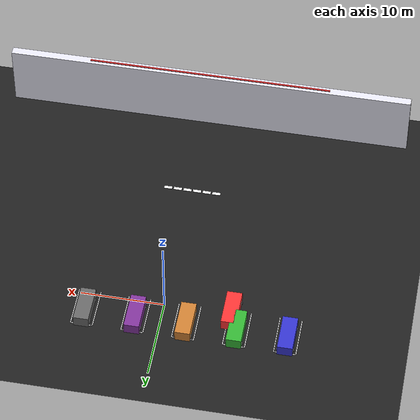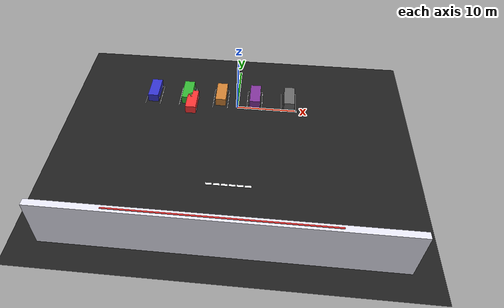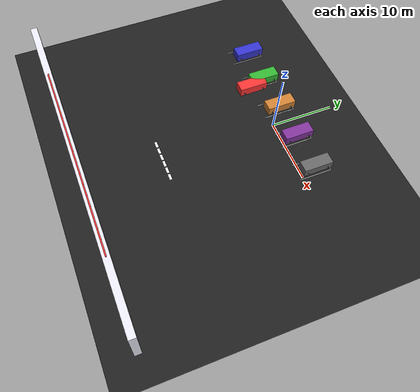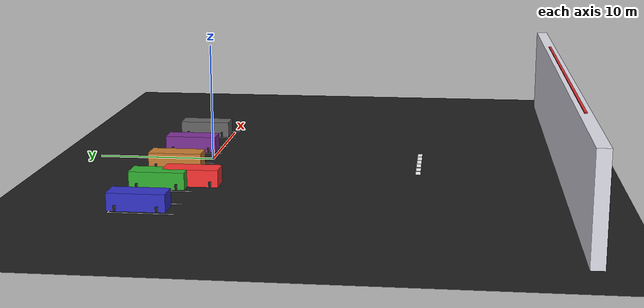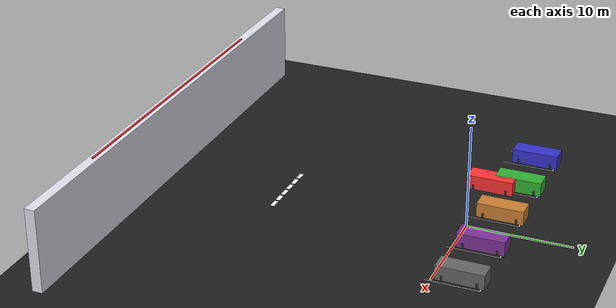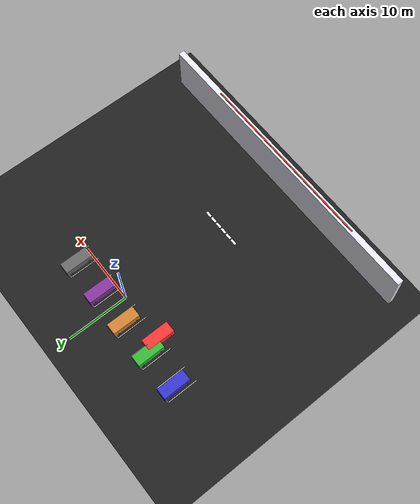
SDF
<?xml version="1.0" ?>
<sdf version="1.10">
  <world name="stopandshop_brigham_world">

    <gravity>0 0 -9.81</gravity>

    <!-- Sun light -->
    <light name="sun" type="directional">
      <cast_shadows>true</cast_shadows>
      <pose>0 0 30 0 -0.6 0</pose>
      <diffuse>1 1 1 1</diffuse>
      <specular>0.1 0.1 0.1 1</specular>
      <attenuation>
        <range>2000</range>
        <constant>0.9</constant>
        <linear>0.01</linear>
        <quadratic>0.001</quadratic>
      </attenuation>
      <direction>-0.5 0.5 -1</direction>
    </light>

    <!-- Asphalt parking lot -->
    <model name="parking_lot">
      <static>true</static>
      <link name="link">
        <collision name="collision">
          <geometry>
            <plane>
              <normal>0 0 1</normal>
              <size>80 80</size>
            </plane>
          </geometry>
        </collision>
        <visual name="visual">
          <geometry>
            <plane>
              <normal>0 0 1</normal>
              <size>80 80</size>
            </plane>
          </geometry>
          <material>
            <ambient>0.08 0.08 0.08 1</ambient>
            <diffuse>0.12 0.12 0.12 1</diffuse>
          </material>
        </visual>
      </link>
    </model>

    <!-- Store front wall with red banner -->
    <model name="store_front">
      <static>true</static>
      <link name="body">
        <pose>0 -30 4 0 0 0</pose>
        <collision name="collision">
          <geometry>
            <box>
              <size>50 1 8</size>
            </box>
          </geometry>
        </collision>
        <visual name="wall">
          <geometry>
            <box>
              <size>50 1 8</size>
            </box>
          </geometry>
          <material>
            <ambient>0.85 0.85 0.9 1</ambient>
            <diffuse>0.9 0.9 0.95 1</diffuse>
          </material>
        </visual>
        <visual name="banner">
          <pose>0 0 3.5 0 0 0</pose>
          <geometry>
            <box>
              <size>30 0.2 1.2</size>
            </box>
          </geometry>
          <material>
            <ambient>0.7 0.1 0.1 1</ambient>
            <diffuse>0.9 0.2 0.2 1</diffuse>
          </material>
        </visual>
      </link>
    </model>

    <!-- Zebra-style crosswalk in front of store -->
    <model name="crosswalk">
      <static>true</static>
      <link name="link">
        <visual name="stripe1">
          <pose>-3 -18 0.02 0 0 0</pose>
          <geometry>
            <box>
              <size>1.0 0.4 0.02</size>
            </box>
          </geometry>
          <material>
            <ambient>0.9 0.9 0.9 1</ambient>
            <diffuse>1.0 1.0 1.0 1</diffuse>
          </material>
        </visual>
        <visual name="stripe2">
          <pose>-1.8 -18 0.02 0 0 0</pose>
          <geometry>
            <box>
              <size>1.0 0.4 0.02</size>
            </box>
          </geometry>
          <material>
            <ambient>0.9 0.9 0.9 1</ambient>
            <diffuse>1.0 1.0 1.0 1</diffuse>
          </material>
        </visual>
        <visual name="stripe3">
          <pose>-0.6 -18 0.02 0 0 0</pose>
          <geometry>
            <box>
              <size>1.0 0.4 0.02</size>
            </box>
          </geometry>
          <material>
            <ambient>0.9 0.9 0.9 1</ambient>
            <diffuse>1.0 1.0 1.0 1</diffuse>
          </material>
        </visual>
        <visual name="stripe4">
          <pose>0.6 -18 0.02 0 0 0</pose>
          <geometry>
            <box>
              <size>1.0 0.4 0.02</size>
            </box>
          </geometry>
          <material>
            <ambient>0.9 0.9 0.9 1</ambient>
            <diffuse>1.0 1.0 1.0 1</diffuse>
          </material>
        </visual>
        <visual name="stripe5">
          <pose>1.8 -18 0.02 0 0 0</pose>
          <geometry>
            <box>
              <size>1.0 0.4 0.02</size>
            </box>
          </geometry>
          <material>
            <ambient>0.9 0.9 0.9 1</ambient>
            <diffuse>1.0 1.0 1.0 1</diffuse>
          </material>
        </visual>
        <visual name="stripe6">
          <pose>3.0 -18 0.02 0 0 0</pose>
          <geometry>
            <box>
              <size>1.0 0.4 0.02</size>
            </box>
          </geometry>
          <material>
            <ambient>0.9 0.9 0.9 1</ambient>
            <diffuse>1.0 1.0 1.0 1</diffuse>
          </material>
        </visual>
      </link>
    </model>

    <!-- Parking stalls row (6 nice rectangular slots) -->
    <model name="parking_stalls_row1">
      <static>true</static>
      <link name="link">
        <!-- Stall centers at x = -15, -9, -3, 3, 9, 15 (y ~2) -->
        <!-- Stall 1 -->
        <visual name="stall1_left">
          <pose>-16.3 2 0.02 0 0 0</pose>
          <geometry><box><size>0.1 5.0 0.02</size></box></geometry>
          <material><ambient>0.9 0.9 0.9 1</ambient><diffuse>1 1 1 1</diffuse></material>
        </visual>
        <visual name="stall1_right">
          <pose>-13.7 2 0.02 0 0 0</pose>
          <geometry><box><size>0.1 5.0 0.02</size></box></geometry>
          <material><ambient>0.9 0.9 0.9 1</ambient><diffuse>1 1 1 1</diffuse></material>
        </visual>
        <visual name="stall1_back">
          <pose>-15 4.5 0.02 0 0 0</pose>
          <geometry><box><size>2.6 0.1 0.02</size></box></geometry>
          <material><ambient>0.9 0.9 0.9 1</ambient><diffuse>1 1 1 1</diffuse></material>
        </visual>

        <!-- Stall 2 -->
        <visual name="stall2_left">
          <pose>-10.3 2 0.02 0 0 0</pose>
          <geometry><box><size>0.1 5.0 0.02</size></box></geometry>
          <material><ambient>0.9 0.9 0.9 1</ambient><diffuse>1 1 1 1</diffuse></material>
        </visual>
        <visual name="stall2_right">
          <pose>-7.7 2 0.02 0 0 0</pose>
          <geometry><box><size>0.1 5.0 0.02</size></box></geometry>
          <material><ambient>0.9 0.9 0.9 1</ambient><diffuse>1 1 1 1</diffuse></material>
        </visual>
        <visual name="stall2_back">
          <pose>-9 4.5 0.02 0 0 0</pose>
          <geometry><box><size>2.6 0.1 0.02</size></box></geometry>
          <material><ambient>0.9 0.9 0.9 1</ambient><diffuse>1 1 1 1</diffuse></material>
        </visual>

        <!-- Stall 3 -->
        <visual name="stall3_left">
          <pose>-4.3 2 0.02 0 0 0</pose>
          <geometry><box><size>0.1 5.0 0.02</size></box></geometry>
          <material><ambient>0.9 0.9 0.9 1</ambient><diffuse>1 1 1 1</diffuse></material>
        </visual>
        <visual name="stall3_right">
          <pose>-1.7 2 0.02 0 0 0</pose>
          <geometry><box><size>0.1 5.0 0.02</size></box></geometry>
          <material><ambient>0.9 0.9 0.9 1</ambient><diffuse>1 1 1 1</diffuse></material>
        </visual>
        <visual name="stall3_back">
          <pose>-3 4.5 0.02 0 0 0</pose>
          <geometry><box><size>2.6 0.1 0.02</size></box></geometry>
          <material><ambient>0.9 0.9 0.9 1</ambient><diffuse>1 1 1 1</diffuse></material>
        </visual>

        <!-- Stall 4 -->
        <visual name="stall4_left">
          <pose>1.7 2 0.02 0 0 0</pose>
          <geometry><box><size>0.1 5.0 0.02</size></box></geometry>
          <material><ambient>0.9 0.9 0.9 1</ambient><diffuse>1 1 1 1</diffuse></material>
        </visual>
        <visual name="stall4_right">
          <pose>4.3 2 0.02 0 0 0</pose>
          <geometry><box><size>0.1 5.0 0.02</size></box></geometry>
          <material><ambient>0.9 0.9 0.9 1</ambient><diffuse>1 1 1 1</diffuse></material>
        </visual>
        <visual name="stall4_back">
          <pose>3 4.5 0.02 0 0 0</pose>
          <geometry><box><size>2.6 0.1 0.02</size></box></geometry>
          <material><ambient>0.9 0.9 0.9 1</ambient><diffuse>1 1 1 1</diffuse></material>
        </visual>

        <!-- Stall 5 -->
        <visual name="stall5_left">
          <pose>7.7 2 0.02 0 0 0</pose>
          <geometry><box><size>0.1 5.0 0.02</size></box></geometry>
          <material><ambient>0.9 0.9 0.9 1</ambient><diffuse>1 1 1 1</diffuse></material>
        </visual>
        <visual name="stall5_right">
          <pose>10.3 2 0.02 0 0 0</pose>
          <geometry><box><size>0.1 5.0 0.02</size></box></geometry>
          <material><ambient>0.9 0.9 0.9 1</ambient><diffuse>1 1 1 1</diffuse></material>
        </visual>
        <visual name="stall5_back">
          <pose>9 4.5 0.02 0 0 0</pose>
          <geometry><box><size>2.6 0.1 0.02</size></box></geometry>
          <material><ambient>0.9 0.9 0.9 1</ambient><diffuse>1 1 1 1</diffuse></material>
        </visual>
      </link>
    </model>

    <!-- Function to define a car with wheels: just copy and change x / color -->
    <!-- Parked car 1 -->
    <model name="parked_car_1">
      <static>true</static>
      <link name="body">
        <pose>-15 2.5 0.7 0 0 0</pose>
        <visual name="car_body">
          <geometry><box><size>1.8 4.5 1.4</size></box></geometry>
          <material><ambient>0.1 0.1 0.6 1</ambient><diffuse>0.2 0.2 0.8 1</diffuse></material>
        </visual>
        <!-- wheels at bottom (z offset -0.45, radius 0.25) -->
        <visual name="wheel_fl">
          <pose>-0.8 1.6 -0.45 1.57 0 0</pose>
          <geometry><cylinder><radius>0.25</radius><length>0.2</length></cylinder></geometry>
          <material><ambient>0.05 0.05 0.05 1</ambient><diffuse>0.1 0.1 0.1 1</diffuse></material>
        </visual>
        <visual name="wheel_fr">
          <pose>0.8 1.6 -0.45 1.57 0 0</pose>
          <geometry><cylinder><radius>0.25</radius><length>0.2</length></cylinder></geometry>
          <material><ambient>0.05 0.05 0.05 1</ambient><diffuse>0.1 0.1 0.1 1</diffuse></material>
        </visual>
        <visual name="wheel_rl">
          <pose>-0.8 -1.6 -0.45 1.57 0 0</pose>
          <geometry><cylinder><radius>0.25</radius><length>0.2</length></cylinder></geometry>
          <material><ambient>0.05 0.05 0.05 1</ambient><diffuse>0.1 0.1 0.1 1</diffuse></material>
        </visual>
        <visual name="wheel_rr">
          <pose>0.8 -1.6 -0.45 1.57 0 0</pose>
          <geometry><cylinder><radius>0.25</radius><length>0.2</length></cylinder></geometry>
          <material><ambient>0.05 0.05 0.05 1</ambient><diffuse>0.1 0.1 0.1 1</diffuse></material>
        </visual>
      </link>
    </model>

    <!-- Parked car 2 -->
    <model name="parked_car_2">
      <static>true</static>
      <link name="body">
        <pose>-9 2.5 0.7 0 0 0</pose>
        <visual name="car_body">
          <geometry><box><size>1.8 4.5 1.4</size></box></geometry>
          <material><ambient>0.1 0.5 0.1 1</ambient><diffuse>0.2 0.7 0.2 1</diffuse></material>
        </visual>
        <visual name="wheel_fl">
          <pose>-0.8 1.6 -0.45 1.57 0 0</pose>
          <geometry><cylinder><radius>0.25</radius><length>0.2</length></cylinder></geometry>
          <material><ambient>0.05 0.05 0.05 1</ambient><diffuse>0.1 0.1 0.1 1</diffuse></material>
        </visual>
        <visual name="wheel_fr">
          <pose>0.8 1.6 -0.45 1.57 0 0</pose>
          <geometry><cylinder><radius>0.25</radius><length>0.2</length></cylinder></geometry>
          <material><ambient>0.05 0.05 0.05 1</ambient><diffuse>0.1 0.1 0.1 1</diffuse></material>
        </visual>
        <visual name="wheel_rl">
          <pose>-0.8 -1.6 -0.45 1.57 0 0</pose>
          <geometry><cylinder><radius>0.25</radius><length>0.2</length></cylinder></geometry>
          <material><ambient>0.05 0.05 0.05 1</ambient><diffuse>0.1 0.1 0.1 1</diffuse></material>
        </visual>
        <visual name="wheel_rr">
          <pose>0.8 -1.6 -0.45 1.57 0 0</pose>
          <geometry><cylinder><radius>0.25</radius><length>0.2</length></cylinder></geometry>
          <material><ambient>0.05 0.05 0.05 1</ambient><diffuse>0.1 0.1 0.1 1</diffuse></material>
        </visual>
      </link>
    </model>

    <!-- Parked car 3 -->
    <model name="parked_car_3">
      <static>true</static>
      <link name="body">
        <pose>-3 2.5 0.7 0 0 0</pose>
        <visual name="car_body">
          <geometry><box><size>1.8 4.5 1.4</size></box></geometry>
          <material><ambient>0.6 0.4 0.1 1</ambient><diffuse>0.8 0.5 0.2 1</diffuse></material>
        </visual>
        <visual name="wheel_fl">
          <pose>-0.8 1.6 -0.45 1.57 0 0</pose>
          <geometry><cylinder><radius>0.25</radius><length>0.2</length></cylinder></geometry>
          <material><ambient>0.05 0.05 0.05 1</ambient><diffuse>0.1 0.1 0.1 1</diffuse></material>
        </visual>
        <visual name="wheel_fr">
          <pose>0.8 1.6 -0.45 1.57 0 0</pose>
          <geometry><cylinder><radius>0.25</radius><length>0.2</length></cylinder></geometry>
          <material><ambient>0.05 0.05 0.05 1</ambient><diffuse>0.1 0.1 0.1 1</diffuse></material>
        </visual>
        <visual name="wheel_rl">
          <pose>-0.8 -1.6 -0.45 1.57 0 0</pose>
          <geometry><cylinder><radius>0.25</radius><length>0.2</length></cylinder></geometry>
          <material><ambient>0.05 0.05 0.05 1</ambient><diffuse>0.1 0.1 0.1 1</diffuse></material>
        </visual>
        <visual name="wheel_rr">
          <pose>0.8 -1.6 -0.45 1.57 0 0</pose>
          <geometry><cylinder><radius>0.25</radius><length>0.2</length></cylinder></geometry>
          <material><ambient>0.05 0.05 0.05 1</ambient><diffuse>0.1 0.1 0.1 1</diffuse></material>
        </visual>
      </link>
    </model>

    <!-- Parked car 4 -->
    <model name="parked_car_4">
      <static>true</static>
      <link name="body">
        <pose>3 2.5 0.7 0 0 0</pose>
        <visual name="car_body">
          <geometry><box><size>1.8 4.5 1.4</size></box></geometry>
          <material><ambient>0.3 0.1 0.4 1</ambient><diffuse>0.5 0.2 0.6 1</diffuse></material>
        </visual>
        <visual name="wheel_fl">
          <pose>-0.8 1.6 -0.45 1.57 0 0</pose>
          <geometry><cylinder><radius>0.25</radius><length>0.2</length></cylinder></geometry>
          <material><ambient>0.05 0.05 0.05 1</ambient><diffuse>0.1 0.1 0.1 1</diffuse></material>
        </visual>
        <visual name="wheel_fr">
          <pose>0.8 1.6 -0.45 1.57 0 0</pose>
          <geometry><cylinder><radius>0.25</radius><length>0.2</length></cylinder></geometry>
          <material><ambient>0.05 0.05 0.05 1</ambient><diffuse>0.1 0.1 0.1 1</diffuse></material>
        </visual>
        <visual name="wheel_rl">
          <pose>-0.8 -1.6 -0.45 1.57 0 0</pose>
          <geometry><cylinder><radius>0.25</radius><length>0.2</length></cylinder></geometry>
          <material><ambient>0.05 0.05 0.05 1</ambient><diffuse>0.1 0.1 0.1 1</diffuse></material>
        </visual>
        <visual name="wheel_rr">
          <pose>0.8 -1.6 -0.45 1.57 0 0</pose>
          <geometry><cylinder><radius>0.25</radius><length>0.2</length></cylinder></geometry>
          <material><ambient>0.05 0.05 0.05 1</ambient><diffuse>0.1 0.1 0.1 1</diffuse></material>
        </visual>
      </link>
    </model>

    <!-- Parked car 5 -->
    <model name="parked_car_5">
      <static>true</static>
      <link name="body">
        <pose>9 2.5 0.7 0 0 0</pose>
        <visual name="car_body">
          <geometry><box><size>1.8 4.5 1.4</size></box></geometry>
          <material><ambient>0.2 0.2 0.2 1</ambient><diffuse>0.4 0.4 0.4 1</diffuse></material>
        </visual>
        <visual name="wheel_fl">
          <pose>-0.8 1.6 -0.45 1.57 0 0</pose>
          <geometry><cylinder><radius>0.25</radius><length>0.2</length></cylinder></geometry>
          <material><ambient>0.05 0.05 0.05 1</ambient><diffuse>0.1 0.1 0.1 1</diffuse></material>
        </visual>
        <visual name="wheel_fr">
          <pose>0.8 1.6 -0.45 1.57 0 0</pose>
          <geometry><cylinder><radius>0.25</radius><length>0.2</length></cylinder></geometry>
          <material><ambient>0.05 0.05 0.05 1</ambient><diffuse>0.1 0.1 0.1 1</diffuse></material>
        </visual>
        <visual name="wheel_rl">
          <pose>-0.8 -1.6 -0.45 1.57 0 0</pose>
          <geometry><cylinder><radius>0.25</radius><length>0.2</length></cylinder></geometry>
          <material><ambient>0.05 0.05 0.05 1</ambient><diffuse>0.1 0.1 0.1 1</diffuse></material>
        </visual>
        <visual name="wheel_rr">
          <pose>0.8 -1.6 -0.45 1.57 0 0</pose>
          <geometry><cylinder><radius>0.25</radius><length>0.2</length></cylinder></geometry>
          <material><ambient>0.05 0.05 0.05 1</ambient><diffuse>0.1 0.1 0.1 1</diffuse></material>
        </visual>
      </link>
    </model>

    <!-- Moving car (this one will be animated via ROS commands) -->
    <model name="moving_car">
      <static>true</static>
      <link name="body">
        <!-- initial pose; we'll override with set_entity_pose -->
        <pose>-8 0 0.7 0 0 0</pose>
        <visual name="car_body">
          <geometry><box><size>1.8 4.5 1.4</size></box></geometry>
          <material><ambient>0.8 0.1 0.1 1</ambient><diffuse>1.0 0.2 0.2 1</diffuse></material>
        </visual>
        <visual name="wheel_fl">
          <pose>-0.8 1.6 -0.45 1.57 0 0</pose>
          <geometry><cylinder><radius>0.25</radius><length>0.2</length></cylinder></geometry>
          <material><ambient>0.05 0.05 0.05 1</ambient><diffuse>0.1 0.1 0.1 1</diffuse></material>
        </visual>
        <visual name="wheel_fr">
          <pose>0.8 1.6 -0.45 1.57 0 0</pose>
          <geometry><cylinder><radius>0.25</radius><length>0.2</length></cylinder></geometry>
          <material><ambient>0.05 0.05 0.05 1</ambient><diffuse>0.1 0.1 0.1 1</diffuse></material>
        </visual>
        <visual name="wheel_rl">
          <pose>-0.8 -1.6 -0.45 1.57 0 0</pose>
          <geometry><cylinder><radius>0.25</radius><length>0.2</length></cylinder></geometry>
          <material><ambient>0.05 0.05 0.05 1</ambient><diffuse>0.1 0.1 0.1 1</diffuse></material>
        </visual>
        <visual name="wheel_rr">
          <pose>0.8 -1.6 -0.45 1.57 0 0</pose>
          <geometry><cylinder><radius>0.25</radius><length>0.2</length></cylinder></geometry>
          <material><ambient>0.05 0.05 0.05 1</ambient><diffuse>0.1 0.1 0.1 1</diffuse></material>
        </visual>
      </link>
    </model>

  </world>
</sdf>
